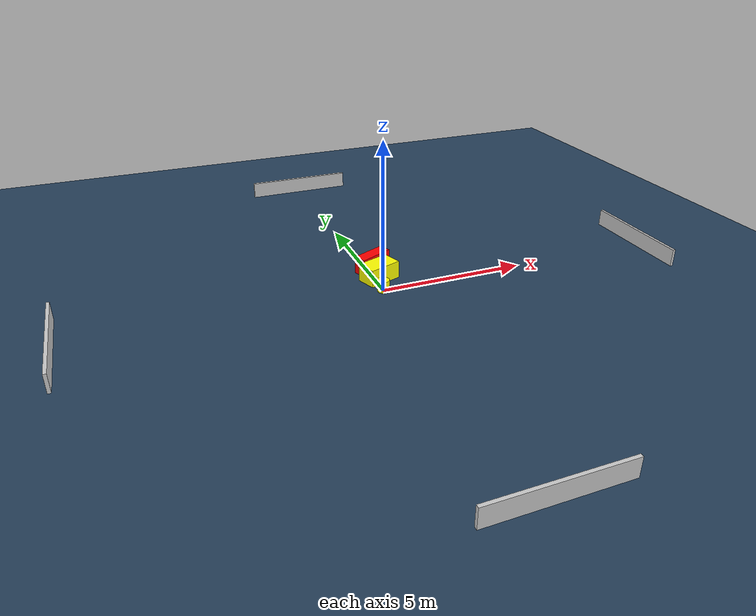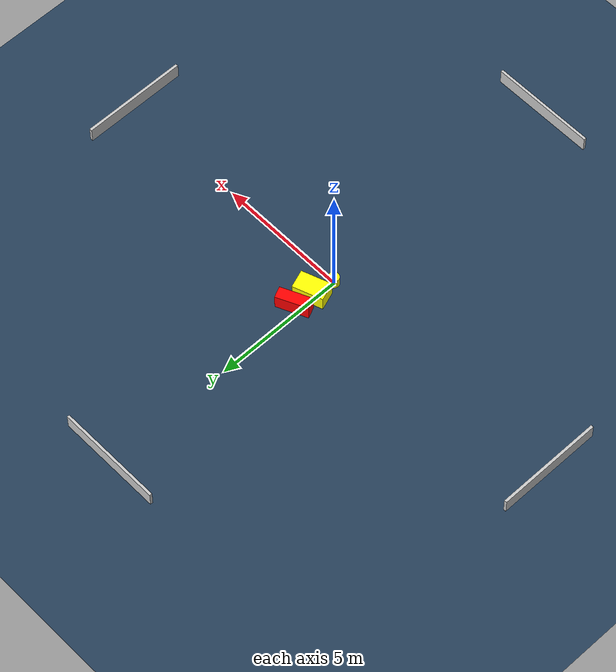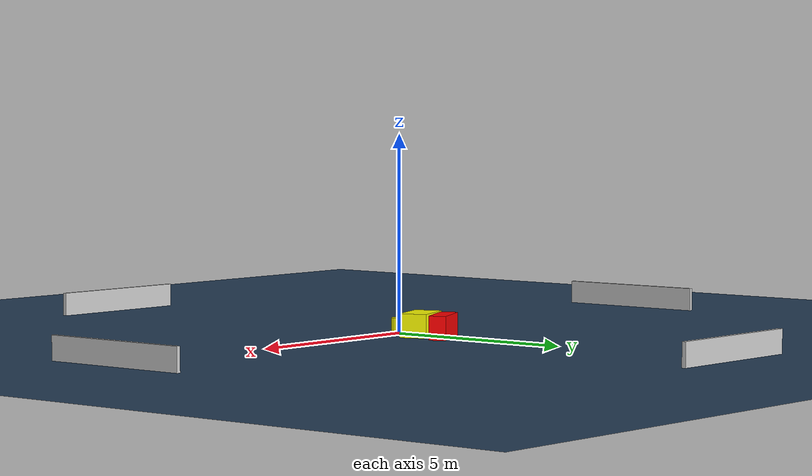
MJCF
<?xml version="1.0" ?>
<mujoco model="generated_environment">
  <option timestep="0.01" integrator="RK4" cone="elliptic"/>
  <default>
    <geom density="1"/>
  </default>
  <asset>
    <texture builtin="gradient" height="3072" name="skybox" rgb1="0.3 0.5 0.7" rgb2="0 0 0" type="skybox" width="512"/>
    <texture builtin="checker" height="300" name="groundplane" rgb1="0.2 0.3 0.4" rgb2="0.1 0.2 0.3" type="2d" width="300"/>
    <material name="groundplane" reflectance="0.2" texrepeat="5 5" texture="groundplane"/>
  </asset>
  <worldbody>
    <light dir="0 0 -1" directional="true" pos="0 0 1.5"/>
    <geom condim="3" friction="0.5 0.005 0.001" material="groundplane" name="floor" pos="0 0 0" size="0 0 0.05" type="plane"/>
    <body name="walls">
      <geom name="wall_1" condim="4" pos="-10.0 0.0 0.3" rgba="0.800000011920929 0.800000011920929 0.800000011920929 1.0" size="0.05 2.0 0.3" type="box"/>
      <geom name="wall_2" condim="4" pos="10.0 0.0 0.3" rgba="0.800000011920929 0.800000011920929 0.800000011920929 1.0" size="0.05 2.0 0.3" type="box"/>
      <geom name="wall_3" condim="4" pos="0.0 -10.0 0.3" rgba="0.800000011920929 0.800000011920929 0.800000011920929 1.0" size="2.0 0.05 0.3" type="box"/>
      <geom name="wall_4" condim="4" pos="0.0 10.0 0.3" rgba="0.800000011920929 0.800000011920929 0.800000011920929 1.0" size="2.0 0.05 0.3" type="box"/>
    </body>
    <body name="robot">
      <joint name="joint_x" type="slide" pos="0 0 0" axis="1 0 0"/>
      <joint name="joint_y" type="slide" pos="0 0 0" axis="0 1 0"/>
      <geom name="robot" type="cylinder" pos="0.0 0.0 0.2" size="0.2 0.2 0.0" mass="5.0" friction="1.0 0.005 0.0001" condim="4" rgba="1.0 1.0 0.0 1.0"/>
    </body>
    <body name="obstacle_1_movable">
      <geom name="obstacle_1_movable" condim="4" pos="0.17383453801924859 0.8432013586297628 0.3" euler="0 0 19.665547383990585" friction="0.0 0.005 0.001" rgba="1.0 1.0 0.0 1.0" size="0.5777076875646258 0.35027054824946596 0.3" type="box" mass="0.1"/>
      <joint type="free"/>
    </body>
    <body name="obstacle_2_static">
      <geom name="obstacle_2_static" condim="4" pos="0.2321037733745226 1.6127872791719697 0.3" euler="0 0 204.52573375809635" friction="0.0 0.005 0.001" rgba="1.0 0.0 0.0 1.0" size="0.6128245716078471 0.21703649792454216 0.3" type="box"/>
    </body>
  </worldbody>
  <actuator>
    <motor name="actuator_x" joint="joint_x" gear="1" ctrlrange="-1 1"/>
    <motor name="actuator_y" joint="joint_y" gear="1" ctrlrange="-1 1"/>
  </actuator>
</mujoco>
